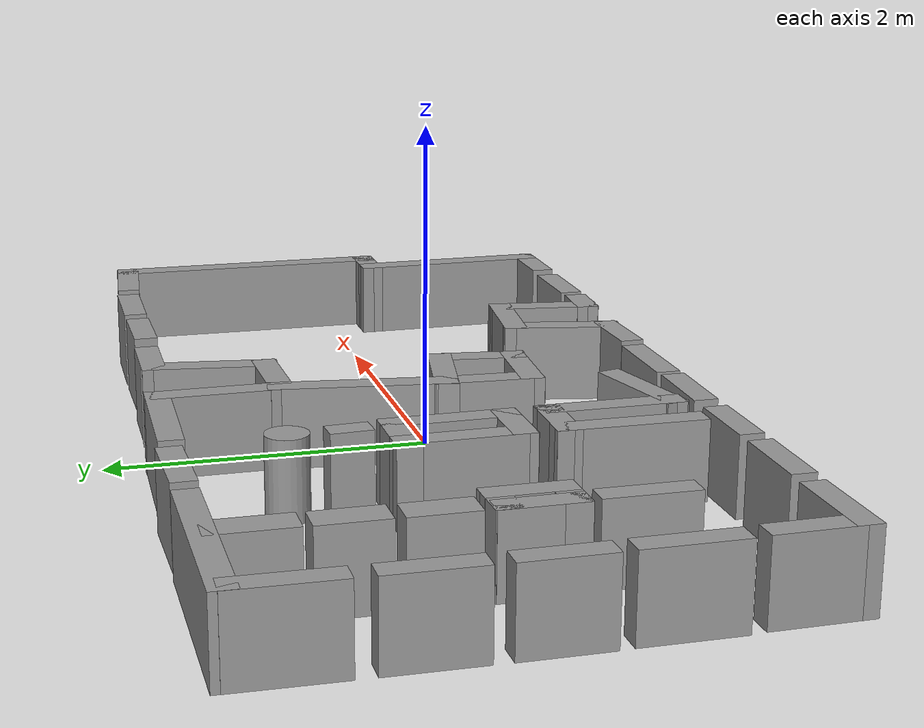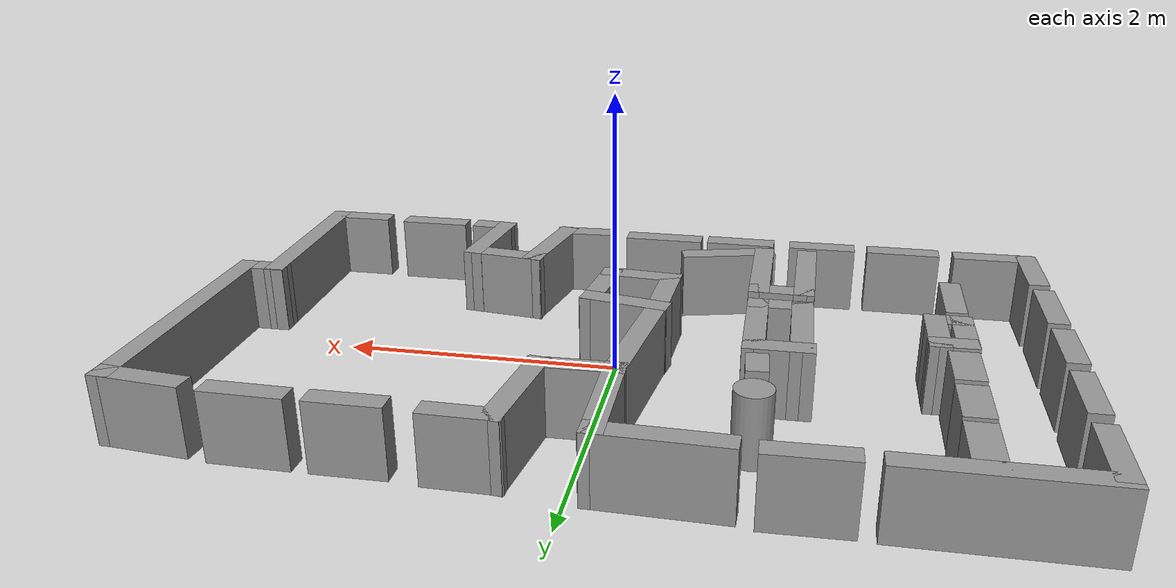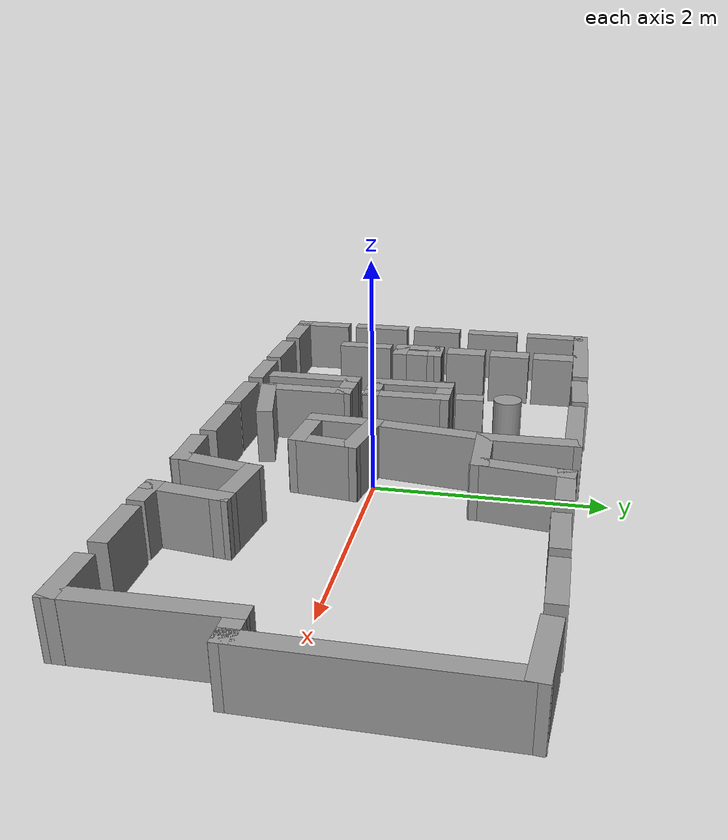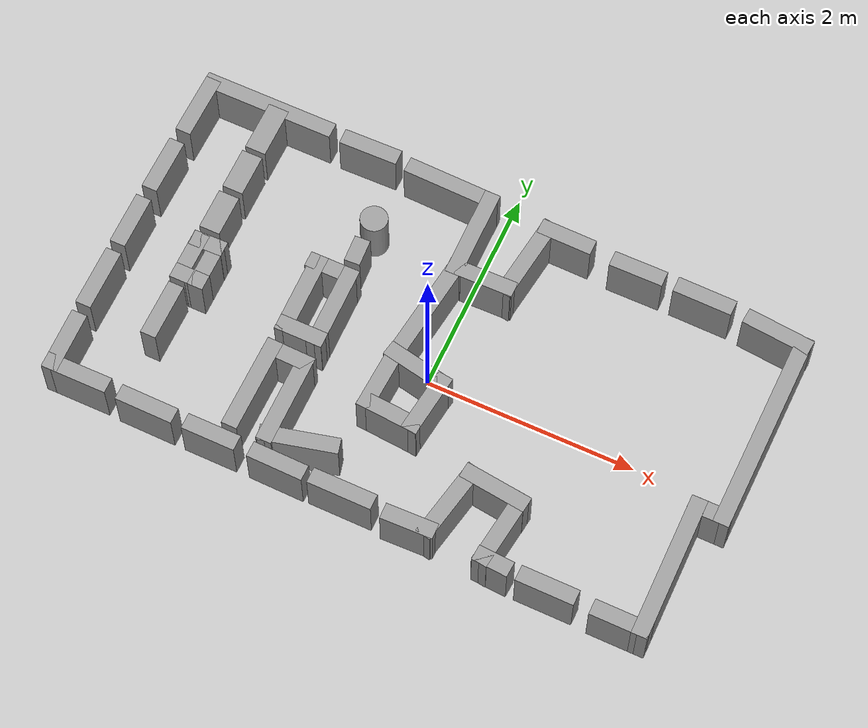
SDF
<?xml version='1.0'?>
<sdf version='1.7'>
  <model name='SALA_LIMO'>
    <pose>-0.033061 0.11198 0 0 -0 0</pose>
    <link name='Wall_101'>
      <collision name='Wall_101_Collision'>
        <geometry>
          <box>
            <size>0.820181 0.15 0.5</size>
          </box>
        </geometry>
        <pose>0 0 0.25 0 -0 0</pose>
      </collision>
      <visual name='Wall_101_Visual'>
        <pose>0 0 0.25 0 -0 0</pose>
        <geometry>
          <box>
            <size>0.820181 0.15 0.5</size>
          </box>
        </geometry>
        <material>
          <script>
            <uri>file://media/materials/scripts/gazebo.material</uri>
            <name>Gazebo/Grey</name>
          </script>
          <ambient>1 1 1 1</ambient>
        </material>
        <meta>
          <layer>0</layer>
        </meta>
      </visual>
      <pose>-1.26644 0.00502 0 0 -0 -1.56035</pose>
    </link>
    <link name='Wall_103'>
      <collision name='Wall_103_Collision'>
        <geometry>
          <box>
            <size>0.460557 0.15 0.5</size>
          </box>
        </geometry>
        <pose>0 0 0.25 0 -0 0</pose>
      </collision>
      <visual name='Wall_103_Visual'>
        <pose>0 0 0.25 0 -0 0</pose>
        <geometry>
          <box>
            <size>0.460557 0.15 0.5</size>
          </box>
        </geometry>
        <material>
          <script>
            <uri>file://media/materials/scripts/gazebo.material</uri>
            <name>Gazebo/Grey</name>
          </script>
          <ambient>1 1 1 1</ambient>
        </material>
        <meta>
          <layer>0</layer>
        </meta>
      </visual>
      <pose>-1.10744 -0.32998 0 0 -0 0</pose>
    </link>
    <link name='Wall_104'>
      <collision name='Wall_104_Collision'>
        <geometry>
          <box>
            <size>0.820181 0.15 0.5</size>
          </box>
        </geometry>
        <pose>0 0 0.25 0 -0 0</pose>
      </collision>
      <visual name='Wall_104_Visual'>
        <pose>0 0 0.25 0 -0 0</pose>
        <geometry>
          <box>
            <size>0.820181 0.15 0.5</size>
          </box>
        </geometry>
        <material>
          <script>
            <uri>file://media/materials/scripts/gazebo.material</uri>
            <name>Gazebo/Grey</name>
          </script>
          <ambient>1 1 1 1</ambient>
        </material>
        <meta>
          <layer>0</layer>
        </meta>
      </visual>
      <pose>-0.955439 0.00502 0 0 -0 1.58124</pose>
    </link>
    <link name='Wall_105'>
      <collision name='Wall_105_Collision'>
        <geometry>
          <box>
            <size>0.480171 0.15 0.5</size>
          </box>
        </geometry>
        <pose>0 0 0.25 0 -0 0</pose>
      </collision>
      <visual name='Wall_105_Visual'>
        <pose>0 0 0.25 0 -0 0</pose>
        <geometry>
          <box>
            <size>0.480171 0.15 0.5</size>
          </box>
        </geometry>
        <material>
          <script>
            <uri>file://media/materials/scripts/gazebo.material</uri>
            <name>Gazebo/Grey</name>
          </script>
          <ambient>1 1 1 1</ambient>
        </material>
        <meta>
          <layer>0</layer>
        </meta>
      </visual>
      <pose>-1.12394 0.340019 0 0 -0 3.14159</pose>
    </link>
    <link name='Wall_108'>
      <collision name='Wall_108_Collision'>
        <geometry>
          <box>
            <size>0.489002 0.2 0.5</size>
          </box>
        </geometry>
        <pose>0 0 0.25 0 -0 0</pose>
      </collision>
      <visual name='Wall_108_Visual'>
        <pose>0 0 0.25 0 -0 0</pose>
        <geometry>
          <box>
            <size>0.489002 0.2 0.5</size>
          </box>
        </geometry>
        <material>
          <script>
            <uri>file://media/materials/scripts/gazebo.material</uri>
            <name>Gazebo/Grey</name>
          </script>
          <ambient>1 1 1 1</ambient>
        </material>
        <meta>
          <layer>0</layer>
        </meta>
      </visual>
      <pose>-2.28344 1.37052 0 0 -0 -1.57426</pose>
    </link>
    <link name='Wall_110'>
      <collision name='Wall_110_Collision'>
        <geometry>
          <box>
            <size>1.30413 0.15 0.5</size>
          </box>
        </geometry>
        <pose>0 0 0.25 0 -0 0</pose>
      </collision>
      <visual name='Wall_110_Visual'>
        <pose>0 0 0.25 0 -0 0</pose>
        <geometry>
          <box>
            <size>1.30413 0.15 0.5</size>
          </box>
        </geometry>
        <material>
          <script>
            <uri>file://media/materials/scripts/gazebo.material</uri>
            <name>Gazebo/Grey</name>
          </script>
          <ambient>1 1 1 1</ambient>
        </material>
        <meta>
          <layer>0</layer>
        </meta>
      </visual>
      <pose>-2.38394 1.60902 0 0 -0 0</pose>
    </link>
    <link name='Wall_112'>
      <collision name='Wall_112_Collision'>
        <geometry>
          <box>
            <size>0.563548 0.15 0.5</size>
          </box>
        </geometry>
        <pose>0 0 0.25 0 -0 0</pose>
      </collision>
      <visual name='Wall_112_Visual'>
        <pose>0 0 0.25 0 -0 0</pose>
        <geometry>
          <box>
            <size>0.563548 0.15 0.5</size>
          </box>
        </geometry>
        <material>
          <script>
            <uri>file://media/materials/scripts/gazebo.material</uri>
            <name>Gazebo/Grey</name>
          </script>
          <ambient>1 1 1 1</ambient>
        </material>
        <meta>
          <layer>0</layer>
        </meta>
      </visual>
      <pose>-1.34444 1.60502 0 0 -0 0.019368</pose>
    </link>
    <link name='Wall_114'>
      <collision name='Wall_114_Collision'>
        <geometry>
          <box>
            <size>0.406053 0.2 0.5</size>
          </box>
        </geometry>
        <pose>0 0 0.25 0 -0 0</pose>
      </collision>
      <visual name='Wall_114_Visual'>
        <pose>0 0 0.25 0 -0 0</pose>
        <geometry>
          <box>
            <size>0.406053 0.2 0.5</size>
          </box>
        </geometry>
        <material>
          <script>
            <uri>file://media/materials/scripts/gazebo.material</uri>
            <name>Gazebo/Grey</name>
          </script>
          <ambient>1 1 1 1</ambient>
        </material>
        <meta>
          <layer>0</layer>
        </meta>
      </visual>
      <pose>-2.28994 0.87702 0 0 -0 -1.5708</pose>
    </link>
    <link name='Wall_118'>
      <collision name='Wall_118_Collision'>
        <geometry>
          <box>
            <size>0.398725 0.2 0.5</size>
          </box>
        </geometry>
        <pose>0 0 0.25 0 -0 0</pose>
      </collision>
      <visual name='Wall_118_Visual'>
        <pose>0 0 0.25 0 -0 0</pose>
        <geometry>
          <box>
            <size>0.398725 0.2 0.5</size>
          </box>
        </geometry>
        <material>
          <script>
            <uri>file://media/materials/scripts/gazebo.material</uri>
            <name>Gazebo/Grey</name>
          </script>
          <ambient>1 1 1 1</ambient>
        </material>
        <meta>
          <layer>0</layer>
        </meta>
      </visual>
      <pose>-2.29494 0.42002 0 0 -0 -1.5708</pose>
    </link>
    <link name='Wall_120'>
      <collision name='Wall_120_Collision'>
        <geometry>
          <box>
            <size>0.504509 0.15 0.5</size>
          </box>
        </geometry>
        <pose>0 0 0.25 0 -0 0</pose>
      </collision>
      <visual name='Wall_120_Visual'>
        <pose>0 0 0.25 0 -0 0</pose>
        <geometry>
          <box>
            <size>0.504509 0.15 0.5</size>
          </box>
        </geometry>
        <material>
          <script>
            <uri>file://media/materials/scripts/gazebo.material</uri>
            <name>Gazebo/Grey</name>
          </script>
          <ambient>1 1 1 1</ambient>
        </material>
        <meta>
          <layer>0</layer>
        </meta>
      </visual>
      <pose>-2.33694 -0.08898 0 0 -0 -1.5708</pose>
    </link>
    <link name='Wall_121'>
      <collision name='Wall_121_Collision'>
        <geometry>
          <box>
            <size>0.327254 0.15 0.5</size>
          </box>
        </geometry>
        <pose>0 0 0.25 0 -0 0</pose>
      </collision>
      <visual name='Wall_121_Visual'>
        <pose>0 0 0.25 0 -0 0</pose>
        <geometry>
          <box>
            <size>0.327254 0.15 0.5</size>
          </box>
        </geometry>
        <material>
          <script>
            <uri>file://media/materials/scripts/gazebo.material</uri>
            <name>Gazebo/Grey</name>
          </script>
          <ambient>1 1 1 1</ambient>
        </material>
        <meta>
          <layer>0</layer>
        </meta>
      </visual>
      <pose>-2.24844 -0.26598 0 0 -0 0</pose>
    </link>
    <link name='Wall_122'>
      <collision name='Wall_122_Collision'>
        <geometry>
          <box>
            <size>0.517478 0.15 0.5</size>
          </box>
        </geometry>
        <pose>0 0 0.25 0 -0 0</pose>
      </collision>
      <visual name='Wall_122_Visual'>
        <pose>0 0 0.25 0 -0 0</pose>
        <geometry>
          <box>
            <size>0.517478 0.15 0.5</size>
          </box>
        </geometry>
        <material>
          <script>
            <uri>file://media/materials/scripts/gazebo.material</uri>
            <name>Gazebo/Grey</name>
          </script>
          <ambient>1 1 1 1</ambient>
        </material>
        <meta>
          <layer>0</layer>
        </meta>
      </visual>
      <pose>-2.15994 -0.08248 0 0 -0 1.5708</pose>
    </link>
    <link name='Wall_123'>
      <collision name='Wall_123_Collision'>
        <geometry>
          <box>
            <size>0.322985 0.15 0.5</size>
          </box>
        </geometry>
        <pose>0 0 0.25 0 -0 0</pose>
      </collision>
      <visual name='Wall_123_Visual'>
        <pose>0 0 0.25 0 -0 0</pose>
        <geometry>
          <box>
            <size>0.322985 0.15 0.5</size>
          </box>
        </geometry>
        <material>
          <script>
            <uri>file://media/materials/scripts/gazebo.material</uri>
            <name>Gazebo/Grey</name>
          </script>
          <ambient>1 1 1 1</ambient>
        </material>
        <meta>
          <layer>0</layer>
        </meta>
      </visual>
      <pose>-2.24644 0.099019 0 0 -0 -3.11848</pose>
    </link>
    <link name='Wall_125'>
      <collision name='Wall_125_Collision'>
        <geometry>
          <box>
            <size>0.550447 0.15 0.5</size>
          </box>
        </geometry>
        <pose>0 0 0.25 0 -0 0</pose>
      </collision>
      <visual name='Wall_125_Visual'>
        <pose>0 0 0.25 0 -0 0</pose>
        <geometry>
          <box>
            <size>0.550447 0.15 0.5</size>
          </box>
        </geometry>
        <material>
          <script>
            <uri>file://media/materials/scripts/gazebo.material</uri>
            <name>Gazebo/Grey</name>
          </script>
          <ambient>1 1 1 1</ambient>
        </material>
        <meta>
          <layer>0</layer>
        </meta>
      </visual>
      <pose>-2.31894 -0.663481 0 0 -0 -1.57578</pose>
    </link>
    <link name='Wall_129'>
      <collision name='Wall_129_Collision'>
        <geometry>
          <box>
            <size>0.533168 0.15 0.5</size>
          </box>
        </geometry>
        <pose>0 0 0.25 0 -0 0</pose>
      </collision>
      <visual name='Wall_129_Visual'>
        <pose>0 0 0.25 0 -0 0</pose>
        <geometry>
          <box>
            <size>0.533168 0.15 0.5</size>
          </box>
        </geometry>
        <material>
          <script>
            <uri>file://media/materials/scripts/gazebo.material</uri>
            <name>Gazebo/Grey</name>
          </script>
          <ambient>1 1 1 1</ambient>
        </material>
        <meta>
          <layer>0</layer>
        </meta>
      </visual>
      <pose>-0.745939 -1.53748 0 0 -0 -0.01302</pose>
    </link>
    <link name='Wall_29'>
      <collision name='Wall_29_Collision'>
        <geometry>
          <box>
            <size>0.611805 0.15 0.5</size>
          </box>
        </geometry>
        <pose>0 0 0.25 0 -0 0</pose>
      </collision>
      <visual name='Wall_29_Visual'>
        <pose>0 0 0.25 0 -0 0</pose>
        <geometry>
          <box>
            <size>0.611805 0.15 0.5</size>
          </box>
        </geometry>
        <material>
          <script>
            <uri>file://media/materials/scripts/gazebo.material</uri>
            <name>Gazebo/Grey</name>
          </script>
          <ambient>1 1 1 1</ambient>
        </material>
        <meta>
          <layer>0</layer>
        </meta>
      </visual>
      <pose>-2.96794 1.32952 0 0 -0 -1.58815</pose>
    </link>
    <link name='Wall_36'>
      <collision name='Wall_36_Collision'>
        <geometry>
          <box>
            <size>0.543513 0.15 0.5</size>
          </box>
        </geometry>
        <pose>0 0 0.25 0 -0 0</pose>
      </collision>
      <visual name='Wall_36_Visual'>
        <pose>0 0 0.25 0 -0 0</pose>
        <geometry>
          <box>
            <size>0.543513 0.15 0.5</size>
          </box>
        </geometry>
        <material>
          <script>
            <uri>file://media/materials/scripts/gazebo.material</uri>
            <name>Gazebo/Grey</name>
          </script>
          <ambient>1 1 1 1</ambient>
        </material>
        <meta>
          <layer>0</layer>
        </meta>
      </visual>
      <pose>-2.97894 0.642519 0 0 -0 -1.58097</pose>
    </link>
    <link name='Wall_38'>
      <collision name='Wall_38_Collision'>
        <geometry>
          <box>
            <size>0.517478 0.15 0.5</size>
          </box>
        </geometry>
        <pose>0 0 0.25 0 -0 0</pose>
      </collision>
      <visual name='Wall_38_Visual'>
        <pose>0 0 0.25 0 -0 0</pose>
        <geometry>
          <box>
            <size>0.517478 0.15 0.5</size>
          </box>
        </geometry>
        <material>
          <script>
            <uri>file://media/materials/scripts/gazebo.material</uri>
            <name>Gazebo/Grey</name>
          </script>
          <ambient>1 1 1 1</ambient>
        </material>
        <meta>
          <layer>0</layer>
        </meta>
      </visual>
      <pose>-2.98494 0.011519 0 0 -0 1.5708</pose>
    </link>
    <link name='Wall_40'>
      <collision name='Wall_40_Collision'>
        <geometry>
          <box>
            <size>0.592487 0.15 0.5</size>
          </box>
        </geometry>
        <pose>0 0 0.25 0 -0 0</pose>
      </collision>
      <visual name='Wall_40_Visual'>
        <pose>0 0 0.25 0 -0 0</pose>
        <geometry>
          <box>
            <size>0.592487 0.15 0.5</size>
          </box>
        </geometry>
        <material>
          <script>
            <uri>file://media/materials/scripts/gazebo.material</uri>
            <name>Gazebo/Grey</name>
          </script>
          <ambient>1 1 1 1</ambient>
        </material>
        <meta>
          <layer>0</layer>
        </meta>
      </visual>
      <pose>-2.97994 -0.621481 0 0 -0 1.5708</pose>
    </link>
    <link name='Wall_42'>
      <collision name='Wall_42_Collision'>
        <geometry>
          <box>
            <size>0.599279 0.15 0.5</size>
          </box>
        </geometry>
        <pose>0 0 0.25 0 -0 0</pose>
      </collision>
      <visual name='Wall_42_Visual'>
        <pose>0 0 0.25 0 -0 0</pose>
        <geometry>
          <box>
            <size>0.599279 0.15 0.5</size>
          </box>
        </geometry>
        <material>
          <script>
            <uri>file://media/materials/scripts/gazebo.material</uri>
            <name>Gazebo/Grey</name>
          </script>
          <ambient>1 1 1 1</ambient>
        </material>
        <meta>
          <layer>0</layer>
        </meta>
      </visual>
      <pose>-2.96394 -1.30148 0 0 -0 -1.55743</pose>
    </link>
    <link name='Wall_44'>
      <collision name='Wall_44_Collision'>
        <geometry>
          <box>
            <size>0.627223 0.15 0.5</size>
          </box>
        </geometry>
        <pose>0 0 0.25 0 -0 0</pose>
      </collision>
      <visual name='Wall_44_Visual'>
        <pose>0 0 0.25 0 -0 0</pose>
        <geometry>
          <box>
            <size>0.627223 0.15 0.5</size>
          </box>
        </geometry>
        <material>
          <script>
            <uri>file://media/materials/scripts/gazebo.material</uri>
            <name>Gazebo/Grey</name>
          </script>
          <ambient>1 1 1 1</ambient>
        </material>
        <meta>
          <layer>0</layer>
        </meta>
      </visual>
      <pose>-2.72244 -1.52448 0 0 -0 0.006289</pose>
    </link>
    <link name='Wall_46'>
      <collision name='Wall_46_Collision'>
        <geometry>
          <box>
            <size>0.55082 0.15 0.5</size>
          </box>
        </geometry>
        <pose>0 0 0.25 0 -0 0</pose>
      </collision>
      <visual name='Wall_46_Visual'>
        <pose>0 0 0.25 0 -0 0</pose>
        <geometry>
          <box>
            <size>0.55082 0.15 0.5</size>
          </box>
        </geometry>
        <material>
          <script>
            <uri>file://media/materials/scripts/gazebo.material</uri>
            <name>Gazebo/Grey</name>
          </script>
          <ambient>1 1 1 1</ambient>
        </material>
        <meta>
          <layer>0</layer>
        </meta>
      </visual>
      <pose>-2.02344 -1.53448 0 0 -0 -0.007481</pose>
    </link>
    <link name='Wall_49'>
      <collision name='Wall_49_Collision'>
        <geometry>
          <box>
            <size>0.510731 0.15 0.5</size>
          </box>
        </geometry>
        <pose>0 0 0.25 0 -0 0</pose>
      </collision>
      <visual name='Wall_49_Visual'>
        <pose>0 0 0.25 0 -0 0</pose>
        <geometry>
          <box>
            <size>0.510731 0.15 0.5</size>
          </box>
        </geometry>
        <material>
          <script>
            <uri>file://media/materials/scripts/gazebo.material</uri>
            <name>Gazebo/Grey</name>
          </script>
          <ambient>1 1 1 1</ambient>
        </material>
        <meta>
          <layer>0</layer>
        </meta>
      </visual>
      <pose>-1.39244 -1.53598 0 0 -0 0</pose>
    </link>
    <link name='Wall_51'>
      <collision name='Wall_51_Collision'>
        <geometry>
          <box>
            <size>0.906623 0.15 0.5</size>
          </box>
        </geometry>
        <pose>0 0 0.25 0 -0 0</pose>
      </collision>
      <visual name='Wall_51_Visual'>
        <pose>0 0 0.25 0 -0 0</pose>
        <geometry>
          <box>
            <size>0.906623 0.15 0.5</size>
          </box>
        </geometry>
        <material>
          <script>
            <uri>file://media/materials/scripts/gazebo.material</uri>
            <name>Gazebo/Grey</name>
          </script>
          <ambient>1 1 1 1</ambient>
        </material>
        <meta>
          <layer>0</layer>
        </meta>
      </visual>
      <pose>-1.27394 -0.96398 0 0 -0 1.56021</pose>
    </link>
    <link name='Wall_52'>
      <collision name='Wall_52_Collision'>
        <geometry>
          <box>
            <size>0.474361 0.15 0.5</size>
          </box>
        </geometry>
        <pose>0 0 0.25 0 -0 0</pose>
      </collision>
      <visual name='Wall_52_Visual'>
        <pose>0 0 0.25 0 -0 0</pose>
        <geometry>
          <box>
            <size>0.474361 0.15 0.5</size>
          </box>
        </geometry>
        <material>
          <script>
            <uri>file://media/materials/scripts/gazebo.material</uri>
            <name>Gazebo/Grey</name>
          </script>
          <ambient>1 1 1 1</ambient>
        </material>
        <meta>
          <layer>0</layer>
        </meta>
      </visual>
      <pose>-1.10744 -0.58998 0 0 -0 -0.02461</pose>
    </link>
    <link name='Wall_53'>
      <collision name='Wall_53_Collision'>
        <geometry>
          <box>
            <size>0.898204 0.15 0.5</size>
          </box>
        </geometry>
        <pose>0 0 0.25 0 -0 0</pose>
      </collision>
      <visual name='Wall_53_Visual'>
        <pose>0 0 0.25 0 -0 0</pose>
        <geometry>
          <box>
            <size>0.898204 0.15 0.5</size>
          </box>
        </geometry>
        <material>
          <script>
            <uri>file://media/materials/scripts/gazebo.material</uri>
            <name>Gazebo/Grey</name>
          </script>
          <ambient>1 1 1 1</ambient>
        </material>
        <meta>
          <layer>0</layer>
        </meta>
      </visual>
      <pose>-0.944939 -0.967981 0 0 -0 -1.5708</pose>
    </link>
    <link name='Wall_61'>
      <collision name='Wall_61_Collision'>
        <geometry>
          <box>
            <size>0.725089 0.15 0.5</size>
          </box>
        </geometry>
        <pose>0 0 0.25 0 -0 0</pose>
      </collision>
      <visual name='Wall_61_Visual'>
        <pose>0 0 0.25 0 -0 0</pose>
        <geometry>
          <box>
            <size>0.725089 0.15 0.5</size>
          </box>
        </geometry>
        <material>
          <script>
            <uri>file://media/materials/scripts/gazebo.material</uri>
            <name>Gazebo/Grey</name>
          </script>
          <ambient>1 1 1 1</ambient>
        </material>
        <meta>
          <layer>0</layer>
        </meta>
      </visual>
      <pose>-0.665939 -1.27248 0 0 -0 0.244135</pose>
    </link>
    <link name='Wall_63'>
      <collision name='Wall_63_Collision'>
        <geometry>
          <box>
            <size>0.610505 0.15 0.5</size>
          </box>
        </geometry>
        <pose>0 0 0.25 0 -0 0</pose>
      </collision>
      <visual name='Wall_63_Visual'>
        <pose>0 0 0.25 0 -0 0</pose>
        <geometry>
          <box>
            <size>0.610505 0.15 0.5</size>
          </box>
        </geometry>
        <material>
          <script>
            <uri>file://media/materials/scripts/gazebo.material</uri>
            <name>Gazebo/Grey</name>
          </script>
          <ambient>1 1 1 1</ambient>
        </material>
        <meta>
          <layer>0</layer>
        </meta>
      </visual>
      <pose>-0.125939 -1.53398 0 0 -0 0</pose>
    </link>
    <link name='Wall_65'>
      <collision name='Wall_65_Collision'>
        <geometry>
          <box>
            <size>0.494145 0.15 0.5</size>
          </box>
        </geometry>
        <pose>0 0 0.25 0 -0 0</pose>
      </collision>
      <visual name='Wall_65_Visual'>
        <pose>0 0 0.25 0 -0 0</pose>
        <geometry>
          <box>
            <size>0.494145 0.15 0.5</size>
          </box>
        </geometry>
        <material>
          <script>
            <uri>file://media/materials/scripts/gazebo.material</uri>
            <name>Gazebo/Grey</name>
          </script>
          <ambient>1 1 1 1</ambient>
        </material>
        <meta>
          <layer>0</layer>
        </meta>
      </visual>
      <pose>0.527061 -1.56148 0 0 -0 0.031966</pose>
    </link>
    <link name='Wall_66'>
      <collision name='Wall_66_Collision'>
        <geometry>
          <box>
            <size>0.782188 0.15 0.5</size>
          </box>
        </geometry>
        <pose>0 0 0.25 0 -0 0</pose>
      </collision>
      <visual name='Wall_66_Visual'>
        <pose>0 0 0.25 0 -0 0</pose>
        <geometry>
          <box>
            <size>0.782188 0.15 0.5</size>
          </box>
        </geometry>
        <material>
          <script>
            <uri>file://media/materials/scripts/gazebo.material</uri>
            <name>Gazebo/Grey</name>
          </script>
          <ambient>1 1 1 1</ambient>
        </material>
        <meta>
          <layer>0</layer>
        </meta>
      </visual>
      <pose>0.761561 -1.24598 0 0 -0 1.37185</pose>
    </link>
    <link name='Wall_67'>
      <collision name='Wall_67_Collision'>
        <geometry>
          <box>
            <size>0.645049 0.15 0.5</size>
          </box>
        </geometry>
        <pose>0 0 0.25 0 -0 0</pose>
      </collision>
      <visual name='Wall_67_Visual'>
        <pose>0 0 0.25 0 -0 0</pose>
        <geometry>
          <box>
            <size>0.645049 0.15 0.5</size>
          </box>
        </geometry>
        <material>
          <script>
            <uri>file://media/materials/scripts/gazebo.material</uri>
            <name>Gazebo/Grey</name>
          </script>
          <ambient>1 1 1 1</ambient>
        </material>
        <meta>
          <layer>0</layer>
        </meta>
      </visual>
      <pose>1.06956 -0.964481 0 0 -0 -0.115572</pose>
    </link>
    <link name='Wall_68'>
      <collision name='Wall_68_Collision'>
        <geometry>
          <box>
            <size>0.746599 0.15 0.5</size>
          </box>
        </geometry>
        <pose>0 0 0.25 0 -0 0</pose>
      </collision>
      <visual name='Wall_68_Visual'>
        <pose>0 0 0.25 0 -0 0</pose>
        <geometry>
          <box>
            <size>0.746599 0.15 0.5</size>
          </box>
        </geometry>
        <material>
          <script>
            <uri>file://media/materials/scripts/gazebo.material</uri>
            <name>Gazebo/Grey</name>
          </script>
          <ambient>1 1 1 1</ambient>
        </material>
        <meta>
          <layer>0</layer>
        </meta>
      </visual>
      <pose>1.27556 -1.28848 0 0 -0 -1.70368</pose>
    </link>
    <link name='Wall_69'>
      <collision name='Wall_69_Collision'>
        <geometry>
          <box>
            <size>0.340795 0.15 0.5</size>
          </box>
        </geometry>
        <pose>0 0 0.25 0 -0 0</pose>
      </collision>
      <visual name='Wall_69_Visual'>
        <pose>0 0 0.25 0 -0 0</pose>
        <geometry>
          <box>
            <size>0.340795 0.15 0.5</size>
          </box>
        </geometry>
        <material>
          <script>
            <uri>file://media/materials/scripts/gazebo.material</uri>
            <name>Gazebo/Grey</name>
          </script>
          <ambient>1 1 1 1</ambient>
        </material>
        <meta>
          <layer>0</layer>
        </meta>
      </visual>
      <pose>1.33106 -1.58998 0 0 -0 -0.063074</pose>
    </link>
    <link name='Wall_71'>
      <collision name='Wall_71_Collision'>
        <geometry>
          <box>
            <size>0.545125 0.15 0.5</size>
          </box>
        </geometry>
        <pose>0 0 0.25 0 -0 0</pose>
      </collision>
      <visual name='Wall_71_Visual'>
        <pose>0 0 0.25 0 -0 0</pose>
        <geometry>
          <box>
            <size>0.545125 0.15 0.5</size>
          </box>
        </geometry>
        <material>
          <script>
            <uri>file://media/materials/scripts/gazebo.material</uri>
            <name>Gazebo/Grey</name>
          </script>
          <ambient>1 1 1 1</ambient>
        </material>
        <meta>
          <layer>0</layer>
        </meta>
      </visual>
      <pose>1.84256 -1.59598 0 0 -0 0</pose>
    </link>
    <link name='Wall_73'>
      <collision name='Wall_73_Collision'>
        <geometry>
          <box>
            <size>0.53944 0.15 0.5</size>
          </box>
        </geometry>
        <pose>0 0 0.25 0 -0 0</pose>
      </collision>
      <visual name='Wall_73_Visual'>
        <pose>0 0 0.25 0 -0 0</pose>
        <geometry>
          <box>
            <size>0.53944 0.15 0.5</size>
          </box>
        </geometry>
        <material>
          <script>
            <uri>file://media/materials/scripts/gazebo.material</uri>
            <name>Gazebo/Grey</name>
          </script>
          <ambient>1 1 1 1</ambient>
        </material>
        <meta>
          <layer>0</layer>
        </meta>
      </visual>
      <pose>2.53056 -1.60998 0 0 -0 0</pose>
    </link>
    <link name='Wall_74'>
      <collision name='Wall_74_Collision'>
        <geometry>
          <box>
            <size>1.37367 0.15 0.5</size>
          </box>
        </geometry>
        <pose>0 0 0.25 0 -0 0</pose>
      </collision>
      <visual name='Wall_74_Visual'>
        <pose>0 0 0.25 0 -0 0</pose>
        <geometry>
          <box>
            <size>1.37367 0.15 0.5</size>
          </box>
        </geometry>
        <material>
          <script>
            <uri>file://media/materials/scripts/gazebo.material</uri>
            <name>Gazebo/Grey</name>
          </script>
          <ambient>1 1 1 1</ambient>
        </material>
        <meta>
          <layer>0</layer>
        </meta>
      </visual>
      <pose>2.71956 -0.99798 0 0 -0 1.57978</pose>
    </link>
    <link name='Wall_75'>
      <collision name='Wall_75_Collision'>
        <geometry>
          <box>
            <size>0.399856 0.15 0.5</size>
          </box>
        </geometry>
        <pose>0 0 0.25 0 -0 0</pose>
      </collision>
      <visual name='Wall_75_Visual'>
        <pose>0 0 0.25 0 -0 0</pose>
        <geometry>
          <box>
            <size>0.399856 0.15 0.5</size>
          </box>
        </geometry>
        <material>
          <script>
            <uri>file://media/materials/scripts/gazebo.material</uri>
            <name>Gazebo/Grey</name>
          </script>
          <ambient>1 1 1 1</ambient>
        </material>
        <meta>
          <layer>0</layer>
        </meta>
      </visual>
      <pose>2.83906 -0.38598 0 0 -0 0</pose>
    </link>
    <link name='Wall_76'>
      <collision name='Wall_76_Collision'>
        <geometry>
          <box>
            <size>1.95428 0.15 0.5</size>
          </box>
        </geometry>
        <pose>0 0 0.25 0 -0 0</pose>
      </collision>
      <visual name='Wall_76_Visual'>
        <pose>0 0 0.25 0 -0 0</pose>
        <geometry>
          <box>
            <size>1.95428 0.15 0.5</size>
          </box>
        </geometry>
        <material>
          <script>
            <uri>file://media/materials/scripts/gazebo.material</uri>
            <name>Gazebo/Grey</name>
          </script>
          <ambient>1 1 1 1</ambient>
        </material>
        <meta>
          <layer>0</layer>
        </meta>
      </visual>
      <pose>2.97106 0.51602 0 0 -0 1.56304</pose>
    </link>
    <link name='Wall_77'>
      <collision name='Wall_77_Collision'>
        <geometry>
          <box>
            <size>0.646635 0.15 0.5</size>
          </box>
        </geometry>
        <pose>0 0 0.25 0 -0 0</pose>
      </collision>
      <visual name='Wall_77_Visual'>
        <pose>0 0 0.25 0 -0 0</pose>
        <geometry>
          <box>
            <size>0.646635 0.15 0.5</size>
          </box>
        </geometry>
        <material>
          <script>
            <uri>file://media/materials/scripts/gazebo.material</uri>
            <name>Gazebo/Grey</name>
          </script>
          <ambient>1 1 1 1</ambient>
        </material>
        <meta>
          <layer>0</layer>
        </meta>
      </visual>
      <pose>2.73106 1.44102 0 0 -0 3.04874</pose>
    </link>
    <link name='Wall_79'>
      <collision name='Wall_79_Collision'>
        <geometry>
          <box>
            <size>0.562806 0.15 0.5</size>
          </box>
        </geometry>
        <pose>0 0 0.25 0 -0 0</pose>
      </collision>
      <visual name='Wall_79_Visual'>
        <pose>0 0 0.25 0 -0 0</pose>
        <geometry>
          <box>
            <size>0.562806 0.15 0.5</size>
          </box>
        </geometry>
        <material>
          <script>
            <uri>file://media/materials/scripts/gazebo.material</uri>
            <name>Gazebo/Grey</name>
          </script>
          <ambient>1 1 1 1</ambient>
        </material>
        <meta>
          <layer>0</layer>
        </meta>
      </visual>
      <pose>2.00656 1.49152 0 0 -0 -0.012106</pose>
    </link>
    <link name='Wall_81'>
      <collision name='Wall_81_Collision'>
        <geometry>
          <box>
            <size>0.510898 0.15 0.5</size>
          </box>
        </geometry>
        <pose>0 0 0.25 0 -0 0</pose>
      </collision>
      <visual name='Wall_81_Visual'>
        <pose>0 0 0.25 0 -0 0</pose>
        <geometry>
          <box>
            <size>0.510898 0.15 0.5</size>
          </box>
        </geometry>
        <material>
          <script>
            <uri>file://media/materials/scripts/gazebo.material</uri>
            <name>Gazebo/Grey</name>
          </script>
          <ambient>1 1 1 1</ambient>
        </material>
        <meta>
          <layer>0</layer>
        </meta>
      </visual>
      <pose>1.36256 1.49302 0 0 -0 0.00554</pose>
    </link>
    <link name='Wall_83'>
      <collision name='Wall_83_Collision'>
        <geometry>
          <box>
            <size>0.525794 0.15 0.5</size>
          </box>
        </geometry>
        <pose>0 0 0.25 0 -0 0</pose>
      </collision>
      <visual name='Wall_83_Visual'>
        <pose>0 0 0.25 0 -0 0</pose>
        <geometry>
          <box>
            <size>0.525794 0.15 0.5</size>
          </box>
        </geometry>
        <material>
          <script>
            <uri>file://media/materials/scripts/gazebo.material</uri>
            <name>Gazebo/Grey</name>
          </script>
          <ambient>1 1 1 1</ambient>
        </material>
        <meta>
          <layer>0</layer>
        </meta>
      </visual>
      <pose>0.650061 1.51652 0 0 -0 3.1283</pose>
    </link>
    <link name='Wall_84'>
      <collision name='Wall_84_Collision'>
        <geometry>
          <box>
            <size>0.843466 0.15 0.5</size>
          </box>
        </geometry>
        <pose>0 0 0.25 0 -0 0</pose>
      </collision>
      <visual name='Wall_84_Visual'>
        <pose>0 0 0.25 0 -0 0</pose>
        <geometry>
          <box>
            <size>0.843466 0.15 0.5</size>
          </box>
        </geometry>
        <material>
          <script>
            <uri>file://media/materials/scripts/gazebo.material</uri>
            <name>Gazebo/Grey</name>
          </script>
          <ambient>1 1 1 1</ambient>
        </material>
        <meta>
          <layer>0</layer>
        </meta>
      </visual>
      <pose>0.415561 1.17552 0 0 -0 -1.70535</pose>
    </link>
    <link name='Wall_85'>
      <collision name='Wall_85_Collision'>
        <geometry>
          <box>
            <size>0.647276 0.15 0.5</size>
          </box>
        </geometry>
        <pose>0 0 0.25 0 -0 0</pose>
      </collision>
      <visual name='Wall_85_Visual'>
        <pose>0 0 0.25 0 -0 0</pose>
        <geometry>
          <box>
            <size>0.647276 0.15 0.5</size>
          </box>
        </geometry>
        <material>
          <script>
            <uri>file://media/materials/scripts/gazebo.material</uri>
            <name>Gazebo/Grey</name>
          </script>
          <ambient>1 1 1 1</ambient>
        </material>
        <meta>
          <layer>0</layer>
        </meta>
      </visual>
      <pose>0.120561 0.82702 0 0 -0 -3.12148</pose>
    </link>
    <link name='Wall_86'>
      <collision name='Wall_86_Collision'>
        <geometry>
          <box>
            <size>0.89081 0.15 0.5</size>
          </box>
        </geometry>
        <pose>0 0 0.25 0 -0 0</pose>
      </collision>
      <visual name='Wall_86_Visual'>
        <pose>0 0 0.25 0 -0 0</pose>
        <geometry>
          <box>
            <size>0.89081 0.15 0.5</size>
          </box>
        </geometry>
        <material>
          <script>
            <uri>file://media/materials/scripts/gazebo.material</uri>
            <name>Gazebo/Grey</name>
          </script>
          <ambient>1 1 1 1</ambient>
        </material>
        <meta>
          <layer>0</layer>
        </meta>
      </visual>
      <pose>-0.130439 1.19252 0 0 -0 1.57754</pose>
    </link>
    <link name='Wall_87'>
      <collision name='Wall_87_Collision'>
        <geometry>
          <box>
            <size>0.905856 0.15 0.5</size>
          </box>
        </geometry>
        <pose>0 0 0.25 0 -0 0</pose>
      </collision>
      <visual name='Wall_87_Visual'>
        <pose>0 0 0.25 0 -0 0</pose>
        <geometry>
          <box>
            <size>0.905856 0.15 0.5</size>
          </box>
        </geometry>
        <material>
          <script>
            <uri>file://media/materials/scripts/gazebo.material</uri>
            <name>Gazebo/Grey</name>
          </script>
          <ambient>1 1 1 1</ambient>
        </material>
        <meta>
          <layer>0</layer>
        </meta>
      </visual>
      <pose>-0.510939 1.57252 0 0 -0 3.11647</pose>
    </link>
    <link name='Wall_89'>
      <collision name='Wall_89_Collision'>
        <geometry>
          <box>
            <size>1.15272 0.15 0.5</size>
          </box>
        </geometry>
        <pose>0 0 0.25 0 -0 0</pose>
      </collision>
      <visual name='Wall_89_Visual'>
        <pose>0 0 0.25 0 -0 0</pose>
        <geometry>
          <box>
            <size>1.15272 0.15 0.5</size>
          </box>
        </geometry>
        <material>
          <script>
            <uri>file://media/materials/scripts/gazebo.material</uri>
            <name>Gazebo/Grey</name>
          </script>
          <ambient>1 1 1 1</ambient>
        </material>
        <meta>
          <layer>0</layer>
        </meta>
      </visual>
      <pose>-0.192939 0.33452 0 0 -0 -1.70071</pose>
    </link>
    <link name='Wall_90'>
      <collision name='Wall_90_Collision'>
        <geometry>
          <box>
            <size>0.679571 0.15 0.5</size>
          </box>
        </geometry>
        <pose>0 0 0.25 0 -0 0</pose>
      </collision>
      <visual name='Wall_90_Visual'>
        <pose>0 0 0.25 0 -0 0</pose>
        <geometry>
          <box>
            <size>0.679571 0.15 0.5</size>
          </box>
        </geometry>
        <material>
          <script>
            <uri>file://media/materials/scripts/gazebo.material</uri>
            <name>Gazebo/Grey</name>
          </script>
          <ambient>1 1 1 1</ambient>
        </material>
        <meta>
          <layer>0</layer>
        </meta>
      </visual>
      <pose>-0.271939 -0.42698 0 0 -0 -1.62378</pose>
    </link>
    <link name='Wall_91'>
      <collision name='Wall_91_Collision'>
        <geometry>
          <box>
            <size>0.604876 0.15 0.5</size>
          </box>
        </geometry>
        <pose>0 0 0.25 0 -0 0</pose>
      </collision>
      <visual name='Wall_91_Visual'>
        <pose>0 0 0.25 0 -0 0</pose>
        <geometry>
          <box>
            <size>0.604876 0.15 0.5</size>
          </box>
        </geometry>
        <material>
          <script>
            <uri>file://media/materials/scripts/gazebo.material</uri>
            <name>Gazebo/Grey</name>
          </script>
          <ambient>1 1 1 1</ambient>
        </material>
        <meta>
          <layer>0</layer>
        </meta>
      </visual>
      <pose>-0.058939 -0.70748 0 0 -0 -0.07256</pose>
    </link>
    <link name='Wall_92'>
      <collision name='Wall_92_Collision'>
        <geometry>
          <box>
            <size>0.620572 0.15 0.5</size>
          </box>
        </geometry>
        <pose>0 0 0.25 0 -0 0</pose>
      </collision>
      <visual name='Wall_92_Visual'>
        <pose>0 0 0.25 0 -0 0</pose>
        <geometry>
          <box>
            <size>0.620572 0.15 0.5</size>
          </box>
        </geometry>
        <material>
          <script>
            <uri>file://media/materials/scripts/gazebo.material</uri>
            <name>Gazebo/Grey</name>
          </script>
          <ambient>1 1 1 1</ambient>
        </material>
        <meta>
          <layer>0</layer>
        </meta>
      </visual>
      <pose>0.197561 -0.490981 0 0 -0 1.44486</pose>
    </link>
    <link name='Wall_93'>
      <collision name='Wall_93_Collision'>
        <geometry>
          <box>
            <size>0.651655 0.15 0.5</size>
          </box>
        </geometry>
        <pose>0 0 0.25 0 -0 0</pose>
      </collision>
      <visual name='Wall_93_Visual'>
        <pose>0 0 0.25 0 -0 0</pose>
        <geometry>
          <box>
            <size>0.651655 0.15 0.5</size>
          </box>
        </geometry>
        <material>
          <script>
            <uri>file://media/materials/scripts/gazebo.material</uri>
            <name>Gazebo/Grey</name>
          </script>
          <ambient>1 1 1 1</ambient>
        </material>
        <meta>
          <layer>0</layer>
        </meta>
      </visual>
      <pose>-0.019439 -0.21148 0 0 -0 2.95514</pose>
    </link>
    <link name='Wall_99'>
      <collision name='Wall_99_Collision'>
        <geometry>
          <box>
            <size>0.258076 0.15 0.5</size>
          </box>
        </geometry>
        <pose>0 0 0.25 0 -0 0</pose>
      </collision>
      <visual name='Wall_99_Visual'>
        <pose>0 0 0.25 0 -0 0</pose>
        <geometry>
          <box>
            <size>0.258076 0.15 0.5</size>
          </box>
        </geometry>
        <material>
          <script>
            <uri>file://media/materials/scripts/gazebo.material</uri>
            <name>Gazebo/Grey</name>
          </script>
          <ambient>1 1 1 1</ambient>
        </material>
        <meta>
          <layer>0</layer>
        </meta>
      </visual>
      <pose>-0.997939 0.597019 0 0 -0 1.6263</pose>
    </link>

    <link name='Cylinder'>
      <inertial>
        <mass>1</mass>
        <inertia>
          <ixx>0.145833</ixx>
          <ixy>0</ixy>
          <ixz>0</ixz>
          <iyy>0.145833</iyy>
          <iyz>0</iyz>
          <izz>0.125</izz>
        </inertia>
        <pose>0 0 0 0 -0 0</pose>
      </inertial>
      <pose>-1.0 0.95 0.25 -1e-06 -3e-06 -0.03386</pose>
      <gravity>1</gravity>
      <self_collide>0</self_collide>
      <kinematic>0</kinematic>
      <enable_wind>0</enable_wind>
      <visual name='visual'>
        <pose>0 0 0 0 -0 0</pose>
        <geometry>
          <cylinder>
            <radius>0.13</radius>
            <length>0.5</length>
          </cylinder>
        </geometry>
        <material>
          <lighting>1</lighting>
          <script>
            <uri>file://media/materials/scripts/gazebo.material</uri>
            <name>Gazebo/Grey</name>
          </script>
          <shader type='pixel'>
            <normal_map>__default__</normal_map>
          </shader>
          <ambient>1 1 1 1</ambient>
          <diffuse>0.7 0.7 0.7 1</diffuse>
          <specular>0.01 0.01 0.01 1</specular>
          <emissive>0 0 0 1</emissive>
        </material>
        <transparency>0</transparency>
        <cast_shadows>1</cast_shadows>
      </visual>
      <collision name='collision'>
        <laser_retro>0</laser_retro>
        <max_contacts>10</max_contacts>
        <pose>0 0 0 0 -0 0</pose>
        <geometry>
          <cylinder>
            <radius>0.13</radius>
            <length>0.5</length>
          </cylinder>
        </geometry>
        <surface>
          <friction>
            <ode>
              <mu>1</mu>
              <mu2>1</mu2>
              <fdir1>0 0 0</fdir1>
              <slip1>0</slip1>
              <slip2>0</slip2>
            </ode>
            <torsional>
              <coefficient>1</coefficient>
              <patch_radius>0</patch_radius>
              <surface_radius>0</surface_radius>
              <use_patch_radius>1</use_patch_radius>
              <ode>
                <slip>0</slip>
              </ode>
            </torsional>
          </friction>
          <bounce>
            <restitution_coefficient>0</restitution_coefficient>
            <threshold>1e+06</threshold>
          </bounce>
          <contact>
            <collide_without_contact>0</collide_without_contact>
            <collide_without_contact_bitmask>1</collide_without_contact_bitmask>
            <collide_bitmask>1</collide_bitmask>
            <ode>
              <soft_cfm>0</soft_cfm>
              <soft_erp>0.2</soft_erp>
              <kp>1e+13</kp>
              <kd>1</kd>
              <max_vel>0.01</max_vel>
              <min_depth>0</min_depth>
            </ode>
            <bullet>
              <split_impulse>1</split_impulse>
              <split_impulse_penetration_threshold>-0.01</split_impulse_penetration_threshold>
              <soft_cfm>0</soft_cfm>
              <soft_erp>0.2</soft_erp>
              <kp>1e+13</kp>
              <kd>1</kd>
            </bullet>
          </contact>
        </surface>
      </collision>
    </link>
    <static>1</static>
  </model>
</sdf>
